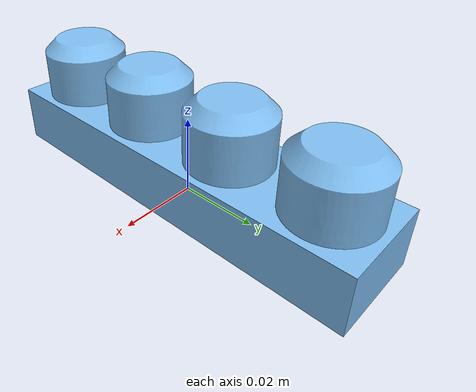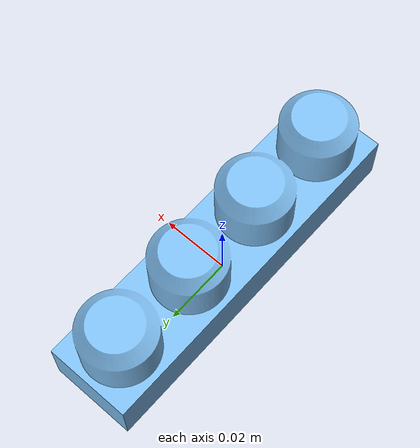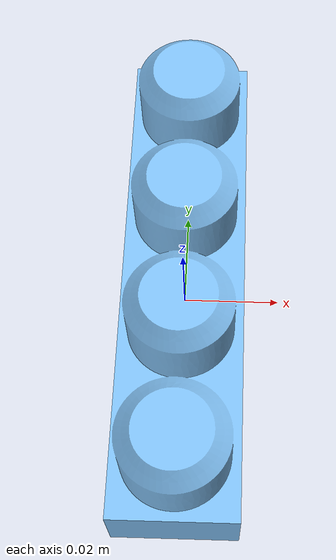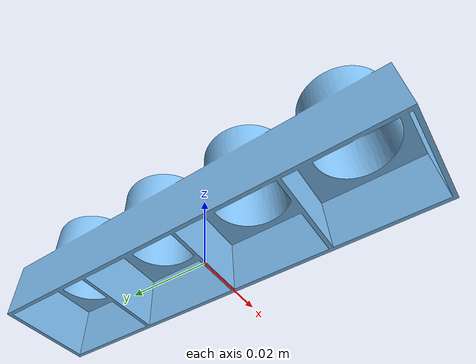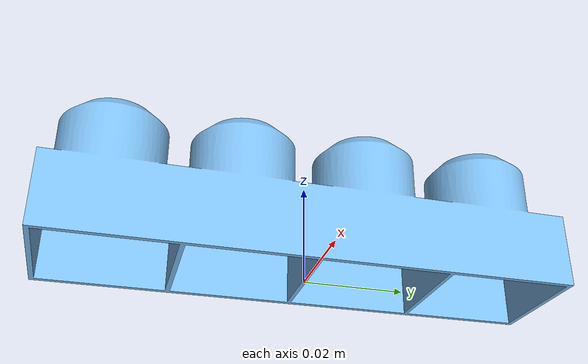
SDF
<?xml version='1.0'?>
<sdf version="1.6">

         <model name="mesh_X1-Y4-Z1">
             <static>0</static>
             <self_collide>0</self_collide>
             <allow_auto_disable>1</allow_auto_disable>

            <pose>0 0 0 0 -0 0</pose>

             <link name="link">

                 <gravity>1</gravity>
                 <self_collide>0</self_collide>
                 <kinematic>0</kinematic>

                <inertial>

                    <mass> 1.0 </mass>

                    <pose>  7.0000000000e-08 -1.3031000000e-04  1.9279910000e-02 0 0 0 </pose>

                    <inertia>
                        <ixx>  1.5764852055e-03 </ixx>
                        <ixy> -2.6957667079e-10 </ixy>
                        <ixz>  2.1566133663e-09 </ixz>
                        <iyy>  2.3807605100e-04 </iyy>
                        <iyz> -1.3857018504e-06 </iyz>
                        <izz>  1.5716815306e-03 </izz>
                    </inertia>
                </inertial>

                 <collision name="collision">

                     <max_contacts>20</max_contacts>

                     <pose>0 0 0 0 -0 0</pose>

                     <geometry>
                         <mesh>
                             <uri>model://X1-Y4-Z1/mesh/X1-Y4-Z1.stl</uri>

                             <scale>0.8 0.8 0.8</scale>
                         </mesh>
                     </geometry>

                     <surface></surface>
                 </collision>

                 <visual name="visual">
                     <cast_shadows>1</cast_shadows>
                     <transparency>0</transparency>

                     <pose>0 0 0 0 -0 0</pose>

                     <material>

                         <script>
                             <uri>file://media/materials/scripts/gazebo.material</uri>

                             <name>Gazebo/SkyBlue</name>
                         </script>
                         <shader type="vertex">
                           <normal_map>__default__</normal_map>
                         </shader>

                     </material>

                     <geometry>
                         <mesh>
                             <uri>model://X1-Y4-Z1/mesh/X1-Y4-Z1.stl</uri>

                             <scale>0.8 0.8 0.8</scale>
                         </mesh>
                     </geometry>
                 </visual>
             </link>
         </model>
     </sdf>
